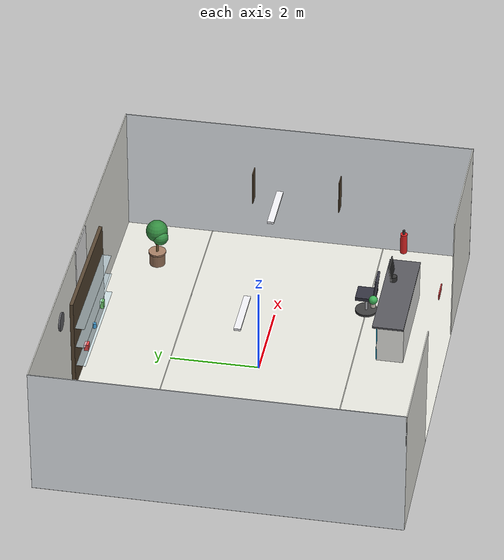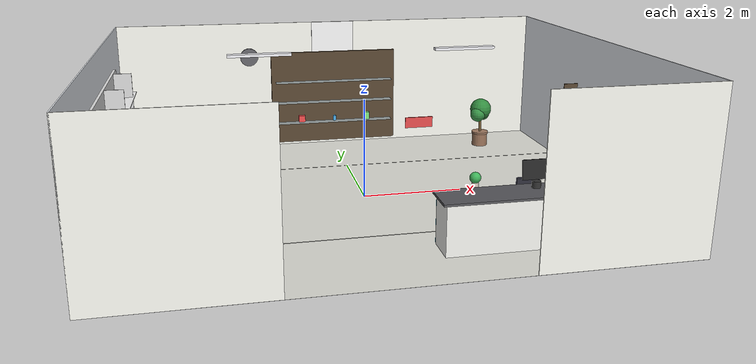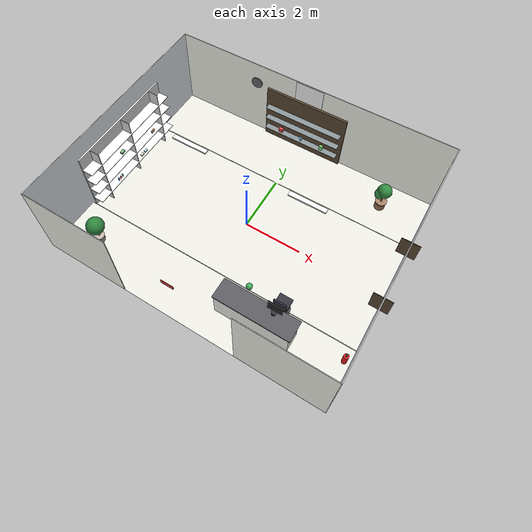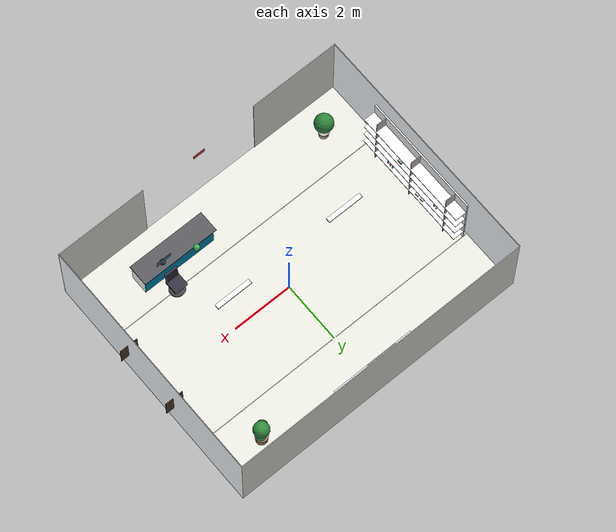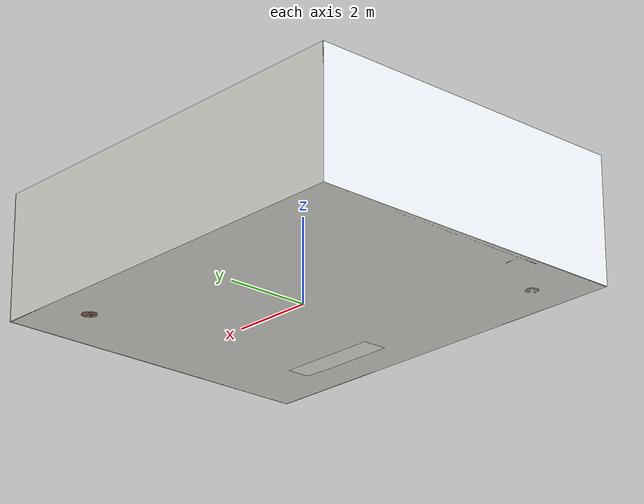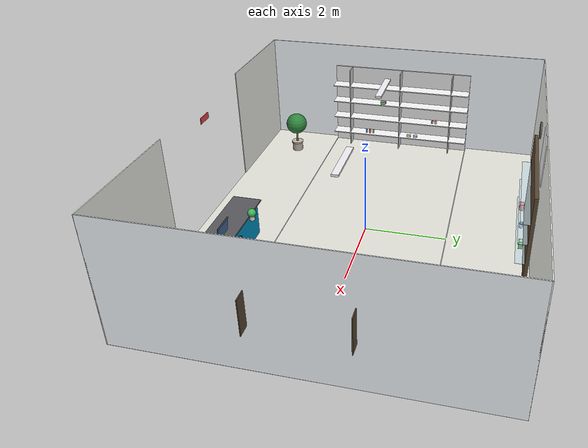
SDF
<?xml version="1.0"?>
<sdf version="1.6">
  <model name="pharmacy_environment">
    <static>true</static>

    <link name="room">
      <!-- ==================== FLOOR ==================== -->
      <visual name="floor_visual">
        <pose>0 0 0.001 0 0 0</pose>
        <geometry>
          <box><size>10 8 0.002</size></box>
        </geometry>
        <material>
          <ambient>0.85 0.85 0.82 1</ambient>
          <diffuse>0.9 0.9 0.87 1</diffuse>
          <specular>0.3 0.3 0.3 1</specular>
        </material>
      </visual>
      <!-- Floor tiles pattern -->
      <visual name="floor_tile_line1">
        <pose>0 -2 0.002 0 0 0</pose>
        <geometry><box><size>10 0.02 0.001</size></box></geometry>
        <material><ambient>0.7 0.7 0.68 1</ambient><diffuse>0.75 0.75 0.72 1</diffuse></material>
      </visual>
      <visual name="floor_tile_line2">
        <pose>0 2 0.002 0 0 0</pose>
        <geometry><box><size>10 0.02 0.001</size></box></geometry>
        <material><ambient>0.7 0.7 0.68 1</ambient><diffuse>0.75 0.75 0.72 1</diffuse></material>
      </visual>

      <!-- ==================== WALLS ==================== -->
      <!-- Back wall with nice color -->
      <visual name="back_wall">
        <pose>0 3.99 1.5 0 0 0</pose>
        <geometry><box><size>10 0.02 3</size></box></geometry>
        <material>
          <ambient>0.95 0.95 0.92 1</ambient>
          <diffuse>0.98 0.98 0.95 1</diffuse>
          <specular>0.1 0.1 0.1 1</specular>
        </material>
      </visual>
      <!-- Front wall (partial, with opening) -->
      <visual name="front_wall_left">
        <pose>-3.5 -3.99 1.5 0 0 0</pose>
        <geometry><box><size>3 0.02 3</size></box></geometry>
        <material>
          <ambient>0.95 0.95 0.92 1</ambient>
          <diffuse>0.98 0.98 0.95 1</diffuse>
        </material>
      </visual>
      <visual name="front_wall_right">
        <pose>3.5 -3.99 1.5 0 0 0</pose>
        <geometry><box><size>3 0.02 3</size></box></geometry>
        <material>
          <ambient>0.95 0.95 0.92 1</ambient>
          <diffuse>0.98 0.98 0.95 1</diffuse>
        </material>
      </visual>
      <!-- Side walls -->
      <visual name="left_wall">
        <pose>-4.99 0 1.5 0 0 0</pose>
        <geometry><box><size>0.02 8 3</size></box></geometry>
        <material>
          <ambient>0.92 0.94 0.96 1</ambient>
          <diffuse>0.95 0.97 0.99 1</diffuse>
        </material>
      </visual>
      <visual name="right_wall">
        <pose>4.99 0 1.5 0 0 0</pose>
        <geometry><box><size>0.02 8 3</size></box></geometry>
        <material>
          <ambient>0.92 0.94 0.96 1</ambient>
          <diffuse>0.95 0.97 0.99 1</diffuse>
        </material>
      </visual>

      <!-- ==================== MODERN PHARMACY SHELVING UNIT (Left Wall) ==================== -->
      <!-- Main shelf frame -->
      <visual name="shelf_unit_back">
        <pose>-4.85 0 1.2 0 0 0</pose>
        <geometry><box><size>0.05 4.0 2.4</size></box></geometry>
        <material><ambient>0.85 0.85 0.85 1</ambient><diffuse>0.9 0.9 0.9 1</diffuse><specular>0.2 0.2 0.2 1</specular></material>
      </visual>
      <!-- Shelf levels -->
      <visual name="shelf_l1">
        <pose>-4.65 0 0.4 0 0 0</pose>
        <geometry><box><size>0.4 4.0 0.025</size></box></geometry>
        <material><ambient>0.95 0.95 0.95 1</ambient><diffuse>0.98 0.98 0.98 1</diffuse><specular>0.3 0.3 0.3 1</specular></material>
      </visual>
      <visual name="shelf_l2">
        <pose>-4.65 0 0.9 0 0 0</pose>
        <geometry><box><size>0.4 4.0 0.025</size></box></geometry>
        <material><ambient>0.95 0.95 0.95 1</ambient><diffuse>0.98 0.98 0.98 1</diffuse><specular>0.3 0.3 0.3 1</specular></material>
      </visual>
      <visual name="shelf_l3">
        <pose>-4.65 0 1.4 0 0 0</pose>
        <geometry><box><size>0.4 4.0 0.025</size></box></geometry>
        <material><ambient>0.95 0.95 0.95 1</ambient><diffuse>0.98 0.98 0.98 1</diffuse><specular>0.3 0.3 0.3 1</specular></material>
      </visual>
      <visual name="shelf_l4">
        <pose>-4.65 0 1.9 0 0 0</pose>
        <geometry><box><size>0.4 4.0 0.025</size></box></geometry>
        <material><ambient>0.95 0.95 0.95 1</ambient><diffuse>0.98 0.98 0.98 1</diffuse><specular>0.3 0.3 0.3 1</specular></material>
      </visual>
      <!-- Vertical dividers -->
      <visual name="shelf_div1">
        <pose>-4.65 -1.5 1.2 0 0 0</pose>
        <geometry><box><size>0.35 0.02 2.4</size></box></geometry>
        <material><ambient>0.8 0.8 0.8 1</ambient><diffuse>0.85 0.85 0.85 1</diffuse></material>
      </visual>
      <visual name="shelf_div2">
        <pose>-4.65 0 1.2 0 0 0</pose>
        <geometry><box><size>0.35 0.02 2.4</size></box></geometry>
        <material><ambient>0.8 0.8 0.8 1</ambient><diffuse>0.85 0.85 0.85 1</diffuse></material>
      </visual>
      <visual name="shelf_div3">
        <pose>-4.65 1.5 1.2 0 0 0</pose>
        <geometry><box><size>0.35 0.02 2.4</size></box></geometry>
        <material><ambient>0.8 0.8 0.8 1</ambient><diffuse>0.85 0.85 0.85 1</diffuse></material>
      </visual>

      <!-- Medicine bottles on shelves (colorful) -->
      <visual name="med_bottle_1"><pose>-4.55 -1.0 0.48 0 0 0</pose><geometry><cylinder><radius>0.025</radius><length>0.12</length></cylinder></geometry><material><ambient>0.2 0.5 0.8 1</ambient><diffuse>0.3 0.6 0.9 1</diffuse></material></visual>
      <visual name="med_bottle_2"><pose>-4.55 -0.9 0.48 0 0 0</pose><geometry><cylinder><radius>0.025</radius><length>0.12</length></cylinder></geometry><material><ambient>0.8 0.3 0.3 1</ambient><diffuse>0.9 0.4 0.4 1</diffuse></material></visual>
      <visual name="med_bottle_3"><pose>-4.55 -0.8 0.48 0 0 0</pose><geometry><cylinder><radius>0.025</radius><length>0.12</length></cylinder></geometry><material><ambient>0.3 0.7 0.4 1</ambient><diffuse>0.4 0.8 0.5 1</diffuse></material></visual>
      <visual name="med_box_1"><pose>-4.55 0.3 0.45 0 0 0</pose><geometry><box><size>0.08 0.12 0.06</size></box></geometry><material><ambient>0.9 0.85 0.7 1</ambient><diffuse>0.95 0.9 0.8 1</diffuse></material></visual>
      <visual name="med_box_2"><pose>-4.55 0.5 0.45 0 0 0</pose><geometry><box><size>0.08 0.12 0.06</size></box></geometry><material><ambient>0.7 0.85 0.9 1</ambient><diffuse>0.8 0.9 0.95 1</diffuse></material></visual>
      <visual name="med_bottle_4"><pose>-4.55 1.0 0.98 0 0 0</pose><geometry><cylinder><radius>0.03</radius><length>0.1</length></cylinder></geometry><material><ambient>0.6 0.4 0.7 1</ambient><diffuse>0.7 0.5 0.8 1</diffuse></material></visual>
      <visual name="med_bottle_5"><pose>-4.55 1.1 0.98 0 0 0</pose><geometry><cylinder><radius>0.03</radius><length>0.1</length></cylinder></geometry><material><ambient>0.9 0.6 0.3 1</ambient><diffuse>0.95 0.7 0.4 1</diffuse></material></visual>
      <visual name="med_box_3"><pose>-4.55 -0.5 1.45 0 0 0</pose><geometry><box><size>0.1 0.15 0.08</size></box></geometry><material><ambient>0.4 0.6 0.4 1</ambient><diffuse>0.5 0.7 0.5 1</diffuse></material></visual>

      <!-- ==================== BACK WALL DISPLAY CABINET ==================== -->
      <visual name="cabinet_frame">
        <pose>0 3.85 1.2 0 0 0</pose>
        <geometry><box><size>3.0 0.08 2.2</size></box></geometry>
        <material><ambient>0.25 0.2 0.15 1</ambient><diffuse>0.35 0.28 0.2 1</diffuse><specular>0.4 0.4 0.4 1</specular></material>
      </visual>
      <!-- Glass shelves -->
      <visual name="cabinet_shelf1">
        <pose>0 3.75 0.6 0 0 0</pose>
        <geometry><box><size>2.8 0.3 0.01</size></box></geometry>
        <material><ambient>0.7 0.8 0.85 0.5</ambient><diffuse>0.8 0.9 0.95 0.6</diffuse><specular>0.9 0.9 0.9 1</specular></material>
      </visual>
      <visual name="cabinet_shelf2">
        <pose>0 3.75 1.1 0 0 0</pose>
        <geometry><box><size>2.8 0.3 0.01</size></box></geometry>
        <material><ambient>0.7 0.8 0.85 0.5</ambient><diffuse>0.8 0.9 0.95 0.6</diffuse><specular>0.9 0.9 0.9 1</specular></material>
      </visual>
      <visual name="cabinet_shelf3">
        <pose>0 3.75 1.6 0 0 0</pose>
        <geometry><box><size>2.8 0.3 0.01</size></box></geometry>
        <material><ambient>0.7 0.8 0.85 0.5</ambient><diffuse>0.8 0.9 0.95 0.6</diffuse><specular>0.9 0.9 0.9 1</specular></material>
      </visual>
      <!-- Display items -->
      <visual name="display_1"><pose>-0.8 3.7 0.7 0 0 0</pose><geometry><box><size>0.15 0.1 0.15</size></box></geometry><material><ambient>0.9 0.2 0.2 1</ambient><diffuse>0.95 0.3 0.3 1</diffuse></material></visual>
      <visual name="display_2"><pose>0 3.7 0.68 0 0 0</pose><geometry><cylinder><radius>0.04</radius><length>0.12</length></cylinder></geometry><material><ambient>0.2 0.6 0.9 1</ambient><diffuse>0.3 0.7 0.95 1</diffuse></material></visual>
      <visual name="display_3"><pose>0.8 3.7 0.7 0 0 0</pose><geometry><box><size>0.12 0.08 0.18</size></box></geometry><material><ambient>0.4 0.8 0.4 1</ambient><diffuse>0.5 0.9 0.5 1</diffuse></material></visual>

      <!-- ==================== PHARMACY CROSS SIGN (Glowing Green) ==================== -->
      <visual name="cross_h">
        <pose>0 3.97 2.5 0 0 0</pose>
        <geometry><box><size>0.8 0.03 0.2</size></box></geometry>
        <material><ambient>0.0 0.8 0.3 1</ambient><diffuse>0.0 0.9 0.4 1</diffuse><emissive>0.0 0.6 0.2 1</emissive></material>
      </visual>
      <visual name="cross_v">
        <pose>0 3.97 2.5 0 0 0</pose>
        <geometry><box><size>0.2 0.03 0.8</size></box></geometry>
        <material><ambient>0.0 0.8 0.3 1</ambient><diffuse>0.0 0.9 0.4 1</diffuse><emissive>0.0 0.6 0.2 1</emissive></material>
      </visual>
      <visual name="cross_backing">
        <pose>0 3.96 2.5 0 0 0</pose>
        <geometry><box><size>1.0 0.02 1.0</size></box></geometry>
        <material><ambient>0.95 0.95 0.95 1</ambient><diffuse>0.98 0.98 0.98 1</diffuse></material>
      </visual>

      <!-- ==================== DECORATIVE POTTED PLANTS ==================== -->
      <!-- Large floor plant 1 -->
      <visual name="pot1_base">
        <pose>3.5 3.0 0.15 0 0 0</pose>
        <geometry><cylinder><radius>0.18</radius><length>0.3</length></cylinder></geometry>
        <material><ambient>0.5 0.35 0.25 1</ambient><diffuse>0.6 0.45 0.35 1</diffuse></material>
      </visual>
      <visual name="pot1_rim">
        <pose>3.5 3.0 0.32 0 0 0</pose>
        <geometry><cylinder><radius>0.2</radius><length>0.04</length></cylinder></geometry>
        <material><ambient>0.55 0.4 0.3 1</ambient><diffuse>0.65 0.5 0.4 1</diffuse></material>
      </visual>
      <visual name="pot1_soil">
        <pose>3.5 3.0 0.28 0 0 0</pose>
        <geometry><cylinder><radius>0.16</radius><length>0.02</length></cylinder></geometry>
        <material><ambient>0.25 0.18 0.12 1</ambient><diffuse>0.3 0.22 0.15 1</diffuse></material>
      </visual>
      <visual name="plant1_trunk">
        <pose>3.5 3.0 0.55 0 0 0</pose>
        <geometry><cylinder><radius>0.03</radius><length>0.5</length></cylinder></geometry>
        <material><ambient>0.35 0.25 0.15 1</ambient><diffuse>0.45 0.35 0.2 1</diffuse></material>
      </visual>
      <visual name="plant1_leaves1">
        <pose>3.5 3.0 0.9 0 0 0</pose>
        <geometry><sphere><radius>0.25</radius></sphere></geometry>
        <material><ambient>0.15 0.45 0.2 1</ambient><diffuse>0.2 0.55 0.25 1</diffuse></material>
      </visual>
      <visual name="plant1_leaves2">
        <pose>3.6 3.1 0.75 0 0 0</pose>
        <geometry><sphere><radius>0.15</radius></sphere></geometry>
        <material><ambient>0.2 0.5 0.25 1</ambient><diffuse>0.25 0.6 0.3 1</diffuse></material>
      </visual>
      <visual name="plant1_leaves3">
        <pose>3.4 2.9 0.8 0 0 0</pose>
        <geometry><sphere><radius>0.18</radius></sphere></geometry>
        <material><ambient>0.18 0.48 0.22 1</ambient><diffuse>0.22 0.58 0.28 1</diffuse></material>
      </visual>

      <!-- Large floor plant 2 -->
      <visual name="pot2_base">
        <pose>-3.8 -3.0 0.12 0 0 0</pose>
        <geometry><cylinder><radius>0.15</radius><length>0.24</length></cylinder></geometry>
        <material><ambient>0.6 0.55 0.5 1</ambient><diffuse>0.7 0.65 0.6 1</diffuse></material>
      </visual>
      <visual name="pot2_rim">
        <pose>-3.8 -3.0 0.26 0 0 0</pose>
        <geometry><cylinder><radius>0.17</radius><length>0.04</length></cylinder></geometry>
        <material><ambient>0.65 0.6 0.55 1</ambient><diffuse>0.75 0.7 0.65 1</diffuse></material>
      </visual>
      <visual name="plant2_trunk">
        <pose>-3.8 -3.0 0.5 0 0 0</pose>
        <geometry><cylinder><radius>0.025</radius><length>0.45</length></cylinder></geometry>
        <material><ambient>0.4 0.3 0.2 1</ambient><diffuse>0.5 0.4 0.25 1</diffuse></material>
      </visual>
      <visual name="plant2_foliage">
        <pose>-3.8 -3.0 0.85 0 0 0</pose>
        <geometry><sphere><radius>0.3</radius></sphere></geometry>
        <material><ambient>0.12 0.42 0.18 1</ambient><diffuse>0.18 0.52 0.24 1</diffuse></material>
      </visual>

      <!-- Small desk plant -->
      <visual name="pot3">
        <pose>1.5 -2.3 0.95 0 0 0</pose>
        <geometry><cylinder><radius>0.06</radius><length>0.1</length></cylinder></geometry>
        <material><ambient>0.8 0.75 0.7 1</ambient><diffuse>0.85 0.8 0.75 1</diffuse></material>
      </visual>
      <visual name="plant3_leaves">
        <pose>1.5 -2.3 1.08 0 0 0</pose>
        <geometry><sphere><radius>0.1</radius></sphere></geometry>
        <material><ambient>0.2 0.6 0.3 1</ambient><diffuse>0.25 0.7 0.35 1</diffuse></material>
      </visual>

      <!-- ==================== MODERN RECEPTION COUNTER ==================== -->
      <visual name="counter_main">
        <pose>2.0 -2.8 0.45 0 0 0</pose>
        <geometry><box><size>2.5 0.6 0.9</size></box></geometry>
        <material><ambient>0.92 0.92 0.9 1</ambient><diffuse>0.96 0.96 0.94 1</diffuse><specular>0.2 0.2 0.2 1</specular></material>
      </visual>
      <visual name="counter_top">
        <pose>2.0 -2.75 0.92 0 0 0</pose>
        <geometry><box><size>2.6 0.7 0.04</size></box></geometry>
        <material><ambient>0.3 0.3 0.32 1</ambient><diffuse>0.35 0.35 0.37 1</diffuse><specular>0.6 0.6 0.6 1</specular></material>
      </visual>
      <visual name="counter_accent">
        <pose>2.0 -2.5 0.45 0 0 0</pose>
        <geometry><box><size>2.5 0.02 0.85</size></box></geometry>
        <material><ambient>0.0 0.5 0.7 1</ambient><diffuse>0.0 0.6 0.8 1</diffuse></material>
      </visual>
      <!-- Computer monitor on counter -->
      <visual name="monitor_stand">
        <pose>2.5 -2.6 1.0 0 0 0</pose>
        <geometry><cylinder><radius>0.08</radius><length>0.12</length></cylinder></geometry>
        <material><ambient>0.15 0.15 0.15 1</ambient><diffuse>0.2 0.2 0.2 1</diffuse></material>
      </visual>
      <visual name="monitor_screen">
        <pose>2.5 -2.55 1.25 -0.15 0 0</pose>
        <geometry><box><size>0.5 0.02 0.35</size></box></geometry>
        <material><ambient>0.1 0.1 0.1 1</ambient><diffuse>0.15 0.15 0.15 1</diffuse><specular>0.8 0.8 0.8 1</specular></material>
      </visual>
      <visual name="monitor_display">
        <pose>2.5 -2.54 1.25 -0.15 0 0</pose>
        <geometry><box><size>0.46 0.01 0.31</size></box></geometry>
        <material><ambient>0.2 0.4 0.6 1</ambient><diffuse>0.3 0.5 0.7 1</diffuse><emissive>0.1 0.2 0.3 1</emissive></material>
      </visual>

      <!-- ==================== OFFICE CHAIR ==================== -->
      <visual name="chair_base">
        <pose>2.5 -2.0 0.05 0 0 0</pose>
        <geometry><cylinder><radius>0.25</radius><length>0.05</length></cylinder></geometry>
        <material><ambient>0.2 0.2 0.2 1</ambient><diffuse>0.25 0.25 0.25 1</diffuse></material>
      </visual>
      <visual name="chair_pole">
        <pose>2.5 -2.0 0.25 0 0 0</pose>
        <geometry><cylinder><radius>0.03</radius><length>0.35</length></cylinder></geometry>
        <material><ambient>0.6 0.6 0.62 1</ambient><diffuse>0.7 0.7 0.72 1</diffuse><specular>0.5 0.5 0.5 1</specular></material>
      </visual>
      <visual name="chair_seat">
        <pose>2.5 -2.0 0.48 0 0 0</pose>
        <geometry><box><size>0.45 0.45 0.08</size></box></geometry>
        <material><ambient>0.15 0.15 0.18 1</ambient><diffuse>0.2 0.2 0.25 1</diffuse></material>
      </visual>
      <visual name="chair_back">
        <pose>2.5 -2.22 0.75 0.1 0 0</pose>
        <geometry><box><size>0.42 0.05 0.5</size></box></geometry>
        <material><ambient>0.15 0.15 0.18 1</ambient><diffuse>0.2 0.2 0.25 1</diffuse></material>
      </visual>

      <!-- ==================== WALL CLOCK ==================== -->
      <visual name="clock_body">
        <pose>-2.0 3.97 2.2 1.5708 0 0</pose>
        <geometry><cylinder><radius>0.2</radius><length>0.04</length></cylinder></geometry>
        <material><ambient>0.9 0.9 0.9 1</ambient><diffuse>0.95 0.95 0.95 1</diffuse><specular>0.3 0.3 0.3 1</specular></material>
      </visual>
      <visual name="clock_face">
        <pose>-2.0 3.96 2.2 1.5708 0 0</pose>
        <geometry><cylinder><radius>0.18</radius><length>0.01</length></cylinder></geometry>
        <material><ambient>1 1 1 1</ambient><diffuse>1 1 1 1</diffuse></material>
      </visual>
      <visual name="clock_frame">
        <pose>-2.0 3.97 2.2 1.5708 0 0</pose>
        <geometry><cylinder><radius>0.21</radius><length>0.05</length></cylinder></geometry>
        <material><ambient>0.3 0.3 0.32 1</ambient><diffuse>0.4 0.4 0.42 1</diffuse></material>
      </visual>

      <!-- ==================== INFORMATIONAL POSTERS ==================== -->
      <visual name="poster1_frame">
        <pose>4.97 1.0 1.5 0 0 1.5708</pose>
        <geometry><box><size>0.02 0.6 0.8</size></box></geometry>
        <material><ambient>0.25 0.2 0.15 1</ambient><diffuse>0.35 0.28 0.2 1</diffuse></material>
      </visual>
      <visual name="poster1">
        <pose>4.96 1.0 1.5 0 0 1.5708</pose>
        <geometry><box><size>0.01 0.55 0.75</size></box></geometry>
        <material><ambient>0.85 0.9 0.95 1</ambient><diffuse>0.9 0.95 1.0 1</diffuse></material>
      </visual>
      <visual name="poster2_frame">
        <pose>4.97 -1.0 1.5 0 0 1.5708</pose>
        <geometry><box><size>0.02 0.6 0.8</size></box></geometry>
        <material><ambient>0.25 0.2 0.15 1</ambient><diffuse>0.35 0.28 0.2 1</diffuse></material>
      </visual>
      <visual name="poster2">
        <pose>4.96 -1.0 1.5 0 0 1.5708</pose>
        <geometry><box><size>0.01 0.55 0.75</size></box></geometry>
        <material><ambient>0.95 0.9 0.85 1</ambient><diffuse>1.0 0.95 0.9 1</diffuse></material>
      </visual>

      <!-- ==================== CEILING LIGHTS ==================== -->
      <visual name="light_fixture1">
        <pose>-2 0 2.95 0 0 0</pose>
        <geometry><box><size>1.2 0.15 0.05</size></box></geometry>
        <material><ambient>0.9 0.9 0.92 1</ambient><diffuse>0.95 0.95 0.97 1</diffuse><emissive>0.8 0.8 0.85 1</emissive></material>
      </visual>
      <visual name="light_fixture2">
        <pose>2 0 2.95 0 0 0</pose>
        <geometry><box><size>1.2 0.15 0.05</size></box></geometry>
        <material><ambient>0.9 0.9 0.92 1</ambient><diffuse>0.95 0.95 0.97 1</diffuse><emissive>0.8 0.8 0.85 1</emissive></material>
      </visual>

      <!-- ==================== EXIT SIGN ==================== -->
      <visual name="exit_sign">
        <pose>0 -3.97 2.6 0 0 0</pose>
        <geometry><box><size>0.4 0.02 0.15</size></box></geometry>
        <material><ambient>0.8 0.2 0.2 1</ambient><diffuse>0.9 0.3 0.3 1</diffuse><emissive>0.5 0.1 0.1 1</emissive></material>
      </visual>

      <!-- ==================== SAFETY EQUIPMENT ==================== -->
      <!-- Fire extinguisher -->
      <visual name="extinguisher_body">
        <pose>4.8 -2.5 0.35 0 0 0</pose>
        <geometry><cylinder><radius>0.08</radius><length>0.5</length></cylinder></geometry>
        <material><ambient>0.8 0.1 0.1 1</ambient><diffuse>0.9 0.15 0.15 1</diffuse></material>
      </visual>
      <visual name="extinguisher_top">
        <pose>4.8 -2.5 0.65 0 0 0</pose>
        <geometry><cylinder><radius>0.03</radius><length>0.1</length></cylinder></geometry>
        <material><ambient>0.2 0.2 0.2 1</ambient><diffuse>0.25 0.25 0.25 1</diffuse></material>
      </visual>

    </link>
  </model>
</sdf>
